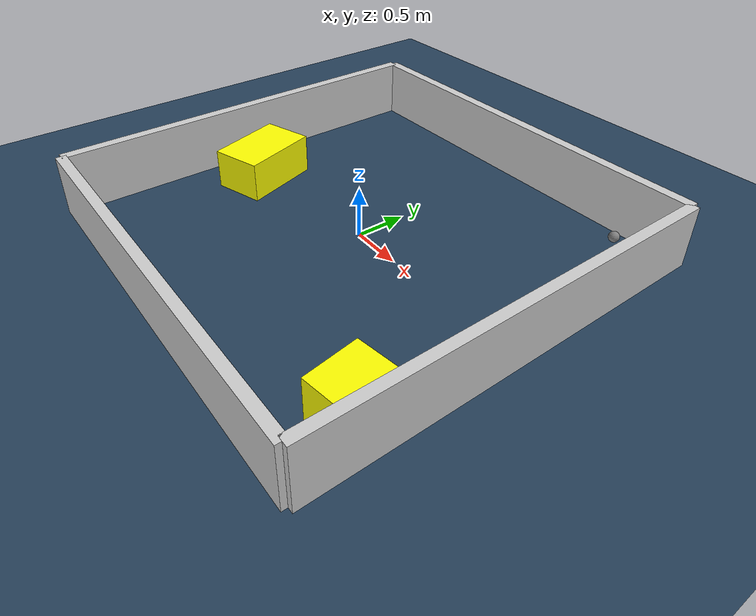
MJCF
<?xml version="1.0" ?>
<mujoco model="generated_environment">
  <option timestep="0.01" integrator="RK4" cone="elliptic"/>
  <default>
    <geom density="1"/>
  </default>
  <asset>
    <texture builtin="gradient" height="3072" rgb1="0.3 0.5 0.7" rgb2="0 0 0" type="skybox" width="512"/>
    <texture builtin="checker" height="300" mark="edge" markrgb="0.8 0.8 0.8" name="groundplane" rgb1="0.2 0.3 0.4" rgb2="0.1 0.2 0.3" type="2d" width="300"/>
    <material name="groundplane" reflectance="0.2" texrepeat="5 5" texture="groundplane" texuniform="true"/>
    <material name="robot" rgba="0.0 1.0 0.0 1"/>
  </asset>
  <worldbody>
    <light dir="0 0 -1" directional="true" pos="0 0 1.5"/>
    <geom condim="4" friction="1.0 0.005 0.001" material="groundplane" name="floor" size="0 0 0.05" type="plane"/>
    <body name="walls">
      <geom name="wall_1" condim="4" pos="-2.0 0.0 0.3" rgba="0.800000011920929 0.800000011920929 0.800000011920929 1.0" size="0.05 2.0 0.3" type="box"/>
      <geom name="wall_2" condim="4" pos="2.0 0.0 0.3" rgba="0.800000011920929 0.800000011920929 0.800000011920929 1.0" size="0.05 2.0 0.3" type="box"/>
      <geom name="wall_3" condim="4" pos="0.0 -2.0 0.3" rgba="0.800000011920929 0.800000011920929 0.800000011920929 1.0" size="2.0 0.05 0.3" type="box"/>
      <geom name="wall_4" condim="4" pos="0.0 2.0 0.3" rgba="0.800000011920929 0.800000011920929 0.800000011920929 1.0" size="2.0 0.05 0.3" type="box"/>
    </body>
    <body name="robot">
      <joint name="joint_x" type="slide" pos="0 0 0" axis="1 0 0"/>
      <joint name="joint_y" type="slide" pos="0 0 0" axis="0 1 0"/>
      <geom name="robot" type="sphere" pos="1.5777932099656717 1.618058563781005 0.2" size="0.05" mass="5." friction="1.0 0.005 0.0001" condim="4"/>
      <site name="sensor_ball"/>
    </body>
    <body name="obstacle_1_movable">
      <geom name="obstacle_1_movable" condim="4" pos="-1.4485639799653436 -0.17123104505029052 0.2" euler="0 0 107.43729561314325" friction="1.0 0.005 0.001" rgba="1 1 0 1" size="0.3934956483600691 0.2566199209445216 0.2" type="box" mass="0.1"/>
      <joint type="free"/>
    </body>
    <body name="obstacle_2_movable">
      <geom name="obstacle_2_movable" condim="4" pos="1.688805478402544 -1.2901143728253475 0.2" euler="0 0 188.58483620942835" friction="1.0 0.005 0.001" rgba="1 1 0 1" size="0.22221280236453841 0.25645455344946866 0.2" type="box" mass="0.1"/>
      <joint type="free"/>
    </body>
  </worldbody>
  <actuator>
    <motor name="actuator_x" joint="joint_x" gear="1" ctrlrange="-1 1"/>
    <motor name="actuator_y" joint="joint_y" gear="1" ctrlrange="-1 1"/>
  </actuator>
</mujoco>
